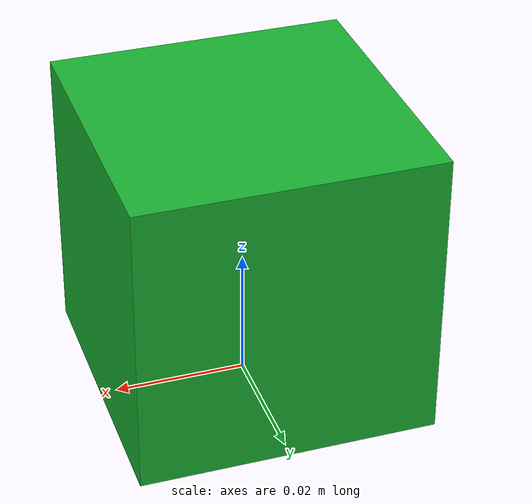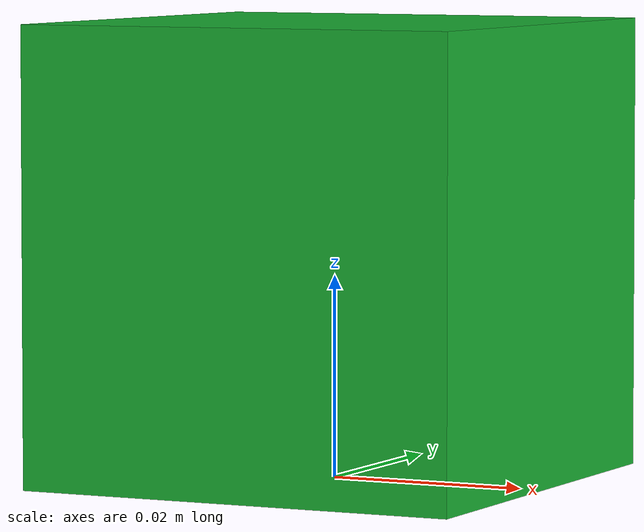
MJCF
<mujoco model="green_cube">
  <worldbody>
    <body>
      <body name="object">
        <geom solimp="0.998 0.998 0.001" solref="0.001 1" friction="1.0 0.3 0.1" density="400" type="box" pos="0 0 0.0225" size="0.0225 0.0225 0.0225" rgba="0.100 0.700 0.200 1.000" group="0"/>
        <geom type="box" pos="0 0 0.0225" size="0.0225 0.0225 0.0225" rgba="0.100 0.700 0.200 1.000" conaffinity="0" contype="0" group="1"/>
      </body>
      <site rgba="0 0 0 0" size="0.005" pos="0 0 0" name="bottom_site" />
      <site rgba="0 0 0 0" size="0.005" pos="0 0 0.0450" name="top_site" />
      <site rgba="0 0 0 0" size="0.005" pos="0.0225 0.0225 0" name="horizontal_radius_site" />
    </body>
  </worldbody>
</mujoco>
